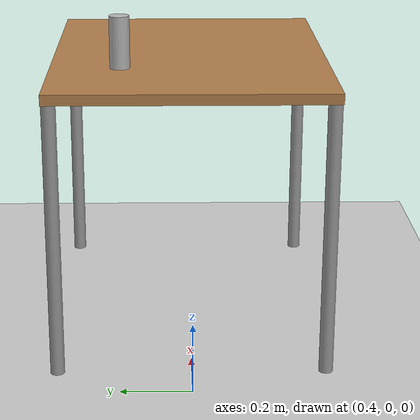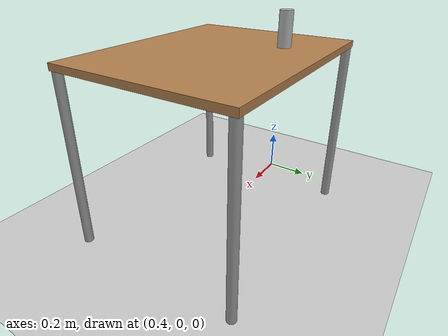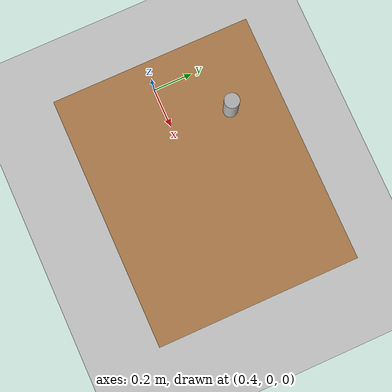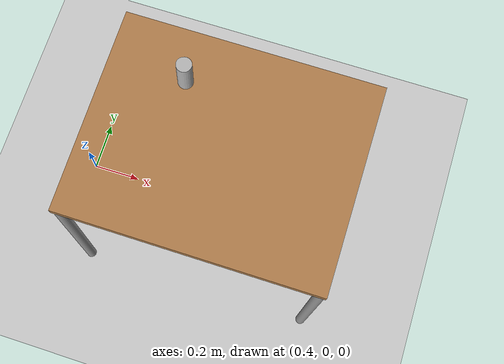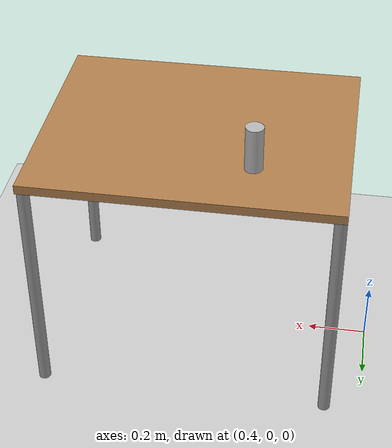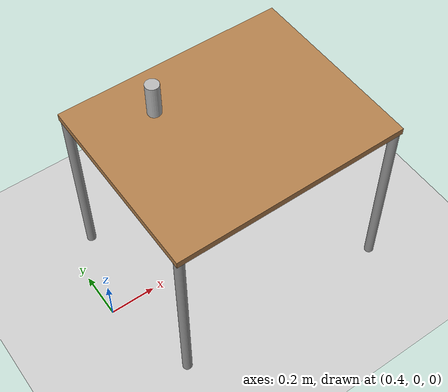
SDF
<sdf version="1.4">
 <world name="default">
  <physics type="ode">
   <gravity>0 0 -9.81</gravity>
   <ode>
    <solver><type>quick</type><iters>20</iters><sor>1</sor></solver>
    <constraints>
     <cfm>0</cfm>
     <erp>0.2</erp>
     <contact_max_correcting_vel>100</contact_max_correcting_vel>
     <contact_surface_layer>0</contact_surface_layer>
    </constraints>
   </ode>
   <real_time_update_rate>1000</real_time_update_rate>
   <max_step_size>0.001</max_step_size>
   <real_time_factor>1</real_time_factor>
  </physics>
  <light name="sun" type="directional">
   <pose>0 0 10 0 -0 0</pose>
   <diffuse>0.8 0.8 0.8 1</diffuse>
   <specular>0.2 0.2 0.2 1</specular>
   <attenuation>
    <range>1000</range>
    <constant>0.9</constant>
    <linear>0.01</linear>
    <quadratic>0.001</quadratic>
   </attenuation>
   <direction>-0.5 0.1 -0.9</direction>
  </light>
  <model name="ground_plane">
   <static>1</static>
   <link name="link">
    <collision name="collision">
     <geometry><plane><normal>0 0 1</normal><size>100 100</size></plane></geometry>
     <surface><friction><ode><mu>100</mu><mu2>50</mu2></ode></friction></surface>
    </collision>
    <visual name="visual">
     <cast_shadows>0</cast_shadows>
     <geometry><plane><normal>0 0 1</normal><size>100 100</size></plane></geometry>
     <material>
      <script><uri>file://media/materials/scripts/gazebo.material</uri><name>Gazebo/Grey</name></script>
     </material>
    </visual>
    <velocity_decay><linear>0</linear><angular>0</angular></velocity_decay>
   </link>
  </model>
  <scene><ambient>0.4 0.4 0.4 1</ambient><background>0.7 0.7 0.7 1</background><shadows>1</shadows></scene>
  <spherical_coordinates>
   <surface_model>EARTH_WGS84</surface_model>
   <latitude_deg>0</latitude_deg>
   <longitude_deg>0</longitude_deg>
   <elevation>0</elevation>
   <heading_deg>0</heading_deg>
  </spherical_coordinates>
  <model name="table">
   <static>1</static>
   <link name="link">
    <collision name="surface">
     <pose>0 0 0.8 0 -0 0</pose>
     <geometry><box><size>1 0.8 0.03</size></box></geometry>
    </collision>
    <visual name="visual1">
     <pose>0 0 0.8 0 -0 0</pose>
     <geometry><box><size>1 0.8 0.03</size></box></geometry>
     <material>
      <script><uri>file://media/materials/scripts/gazebo.material</uri><name>Gazebo/Wood</name></script>
     </material>
    </visual>
    <collision name="front_left_leg">
     <pose>0.48 0.38 0.4 0 -0 0</pose>
     <geometry><cylinder><radius>0.02</radius><length>0.8</length></cylinder></geometry>
    </collision>
    <visual name="front_left_leg">
     <pose>0.48 0.38 0.4 0 -0 0</pose>
     <geometry><cylinder><radius>0.02</radius><length>0.8</length></cylinder></geometry>
     <material>
      <script><uri>file://media/materials/scripts/gazebo.material</uri><name>Gazebo/Grey</name></script>
     </material>
    </visual>
    <collision name="front_right_leg">
     <pose>0.48 -0.38 0.4 0 -0 0</pose>
     <geometry><cylinder><radius>0.02</radius><length>0.8</length></cylinder></geometry>
    </collision>
    <visual name="front_right_leg">
     <pose>0.48 -0.38 0.4 0 -0 0</pose>
     <geometry><cylinder><radius>0.02</radius><length>0.8</length></cylinder></geometry>
     <material>
      <script><uri>file://media/materials/scripts/gazebo.material</uri><name>Gazebo/Grey</name></script>
     </material>
    </visual>
    <collision name="back_right_leg">
     <pose>-0.48 -0.38 0.4 0 -0 0</pose>
     <geometry><cylinder><radius>0.02</radius><length>0.8</length></cylinder></geometry>
    </collision>
    <visual name="back_right_leg">
     <pose>-0.48 -0.38 0.4 0 -0 0</pose>
     <geometry><cylinder><radius>0.02</radius><length>0.8</length></cylinder></geometry>
     <material>
      <script><uri>file://media/materials/scripts/gazebo.material</uri><name>Gazebo/Grey</name></script>
     </material>
    </visual>
    <collision name="back_left_leg">
     <pose>-0.48 0.38 0.4 0 -0 0</pose>
     <geometry><cylinder><radius>0.02</radius><length>0.8</length></cylinder></geometry>
    </collision>
    <visual name="back_left_leg">
     <pose>-0.48 0.38 0.4 0 -0 0</pose>
     <geometry><cylinder><radius>0.02</radius><length>0.8</length></cylinder></geometry>
     <material>
      <script><uri>file://media/materials/scripts/gazebo.material</uri><name>Gazebo/Grey</name></script>
     </material>
    </visual>
    <velocity_decay><linear>0</linear><angular>0</angular></velocity_decay>
   </link>
   <pose>1 0 0 0 -0 0</pose>
  </model>
  <model name="coke_can_slim">
   <static>0</static>
   <link name="link">
    <inertial>
     <mass>0.25</mass>
     <inertia><ixx>0</ixx><ixy>0</ixy><ixz>0</ixz><iyy>0</iyy><iyz>0</iyz><izz>0</izz></inertia>
    </inertial>
    <collision name="collision">
     <geometry><cylinder><radius>0.029</radius><length>0.15</length></cylinder></geometry>
    </collision>
    <visual name="visual">
     <geometry><cylinder><radius>0.029</radius><length>0.15</length></cylinder></geometry>
     <material>
      <script>
       <uri>model://coke_can_slim/material/scripts</uri>
       <uri>model://coke_can_slim/material/textures</uri>
       <name>Custom/coke_can_slim</name>
      </script>
     </material>
    </visual>
    <velocity_decay><linear>0</linear><angular>0</angular></velocity_decay>
   </link>
   <pose>0.8 0.2 0.890007 -0.000145 -0.000222 5e-05</pose>
  </model>
 </world>
</sdf>
